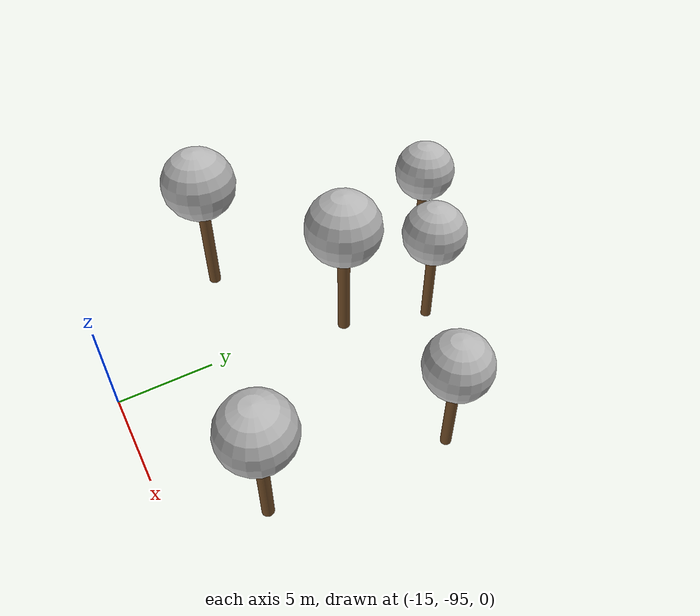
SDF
<sdf version="1.7">
 <world name="default">
  <plugin name="mrs_gazebo_static_transform_republisher_plugin" filename="libMrsGazeboCommonResources_StaticTransformRepublisher.so"/>
  <spherical_coordinates>
   <surface_model>EARTH_WGS84</surface_model>
   <latitude_deg>47.3977</latitude_deg>
   <longitude_deg>8.54559</longitude_deg>
   <elevation>0</elevation>
   <heading_deg>0</heading_deg>
  </spherical_coordinates>
  <physics name="default_physics" default="0" type="ode">
   <ode>
    <solver>
     <type>quick</type>
     <iters>10</iters>
     <sor>1.3</sor>
     <use_dynamic_moi_rescaling>0</use_dynamic_moi_rescaling>
    </solver>
    <constraints>
     <cfm>0</cfm>
     <erp>0.2</erp>
     <contact_max_correcting_vel>1000</contact_max_correcting_vel>
     <contact_surface_layer>0.001</contact_surface_layer>
    </constraints>
   </ode>
   <max_step_size>0.004</max_step_size>
   <real_time_factor>1</real_time_factor>
   <real_time_update_rate>250</real_time_update_rate>
  </physics>
  <scene><shadows>0</shadows><ambient>0.4 0.4 0.4 1</ambient><background>0.7 0.7 0.7 1</background></scene>
  <light name="sun" type="directional">
   <pose>0 0 1000 0.4 0.2 0</pose>
   <diffuse>1 1 1 1</diffuse>
   <specular>0.6 0.6 0.6 1</specular>
   <direction>0.1 0.1 -0.9</direction>
   <attenuation>
    <range>20</range>
    <constant>0.5</constant>
    <linear>0.01</linear>
    <quadratic>0.001</quadratic>
   </attenuation>
   <spot><inner_angle>0</inner_angle><outer_angle>0</outer_angle><falloff>0</falloff></spot>
  </light>
  <model name="the_void">
   <static>1</static>
   <link name="link">
    <pose>0 0 0.1 0 -0 0</pose>
    <visual name="the_void">
     <pose>0 0 2 0 -0 0</pose>
     <geometry><sphere><radius>0.25</radius></sphere></geometry>
     <material>
      <script><uri>file://media/materials/scripts/Gazebo.material</uri><name>Gazebo/Black</name></script>
     </material>
    </visual>
   </link>
   <pose>-1000 -1000 0 0 -0 0</pose>
  </model>
  <plugin name="mrs_gazebo_rviz_cam_synchronizer" filename="libMrsGazeboCommonResources_RvizCameraSynchronizer.so">
   <target_frame_id>gazebo_user_camera</target_frame_id>
   <world_origin_frame_id>uav1/gps_origin</world_origin_frame_id>
   <frame_to_follow>uav1</frame_to_follow>
  </plugin>
  <gravity>0 0 -9.8066</gravity>
  <magnetic_field>6e-06 2.3e-05 -4.2e-05</magnetic_field>
  <atmosphere type="adiabatic"/>
  <model name="tree_simple">
   <static>1</static>
   <link name="link">
    <pose>0 0 0.1 0 -0 0</pose>
    <inertial>
     <mass>666</mass>
     <inertia>
      <ixx>0.0861167</ixx>
      <ixy>0</ixy>
      <ixz>0</ixz>
      <iyy>0.0861167</iyy>
      <iyz>0</iyz>
      <izz>0.0861167</izz>
     </inertia>
    </inertial>
    <collision name="collision_trunk">
     <pose>0 0 2 0 -0 0</pose>
     <geometry><cylinder><radius>0.25</radius><length>4</length></cylinder></geometry>
     <surface>
      <contact>
       <poissons_ratio>0.347</poissons_ratio>
       <elastic_modulus>8.8e+09</elastic_modulus>
       <ode><kp>100000</kp><kd>100</kd><max_vel>100</max_vel><min_depth>0.001</min_depth></ode>
      </contact>
      <friction>
       <torsional>
        <coefficient>1</coefficient>
        <use_patch_radius>0</use_patch_radius>
        <surface_radius>0.01</surface_radius>
       </torsional>
      </friction>
     </surface>
    </collision>
    <collision name="collision_treetop">
     <pose>0 0 5.2 0 -0 0</pose>
     <geometry><sphere><radius>1.5</radius></sphere></geometry>
     <surface>
      <contact>
       <poissons_ratio>0.347</poissons_ratio>
       <elastic_modulus>8.8e+09</elastic_modulus>
       <ode><kp>100000</kp><kd>100</kd><max_vel>100</max_vel><min_depth>0.001</min_depth></ode>
      </contact>
      <friction>
       <torsional>
        <coefficient>1</coefficient>
        <use_patch_radius>0</use_patch_radius>
        <surface_radius>0.01</surface_radius>
       </torsional>
      </friction>
     </surface>
    </collision>
    <visual name="trunk">
     <pose>0 0 2 0 -0 0</pose>
     <geometry><cylinder><radius>0.25</radius><length>4</length></cylinder></geometry>
     <material>
      <script>
       <uri>model://tree_simple/scripts</uri>
       <uri>model://tree_simple/materials/textures</uri>
       <name>TreeSimple/Trunk</name>
      </script>
     </material>
    </visual>
    <visual name="treetop">
     <pose>0 0 5.2 0 -0 0</pose>
     <geometry><sphere><radius>1.5</radius></sphere></geometry>
     <material>
      <script>
       <uri>model://tree_simple/scripts</uri>
       <uri>model://tree_simple/materials/textures</uri>
       <name>TreeSimple/Treetop</name>
      </script>
     </material>
    </visual>
   </link>
   <pose>-14.8583 -77.4349 2.65837 0 -0 0</pose>
  </model>
  <model name="tree_simple_clone">
   <static>1</static>
   <link name="link">
    <pose>0 0 0.1 0 -0 0</pose>
    <inertial>
     <mass>666</mass>
     <inertia>
      <ixx>0.0861167</ixx>
      <ixy>0</ixy>
      <ixz>0</ixz>
      <iyy>0.0861167</iyy>
      <iyz>0</iyz>
      <izz>0.0861167</izz>
     </inertia>
    </inertial>
    <collision name="collision_trunk">
     <pose>0 0 2 0 -0 0</pose>
     <geometry><cylinder><radius>0.25</radius><length>4</length></cylinder></geometry>
     <surface>
      <contact>
       <poissons_ratio>0.347</poissons_ratio>
       <elastic_modulus>8.8e+09</elastic_modulus>
       <ode><kp>100000</kp><kd>100</kd><max_vel>100</max_vel><min_depth>0.001</min_depth></ode>
      </contact>
      <friction>
       <torsional>
        <coefficient>1</coefficient>
        <use_patch_radius>0</use_patch_radius>
        <surface_radius>0.01</surface_radius>
       </torsional>
      </friction>
     </surface>
    </collision>
    <collision name="collision_treetop">
     <pose>0 0 5.2 0 -0 0</pose>
     <geometry><sphere><radius>1.5</radius></sphere></geometry>
     <surface>
      <contact>
       <poissons_ratio>0.347</poissons_ratio>
       <elastic_modulus>8.8e+09</elastic_modulus>
       <ode><kp>100000</kp><kd>100</kd><max_vel>100</max_vel><min_depth>0.001</min_depth></ode>
      </contact>
      <friction>
       <torsional>
        <coefficient>1</coefficient>
        <use_patch_radius>0</use_patch_radius>
        <surface_radius>0.01</surface_radius>
       </torsional>
      </friction>
     </surface>
    </collision>
    <visual name="trunk">
     <pose>0 0 2 0 -0 0</pose>
     <geometry><cylinder><radius>0.25</radius><length>4</length></cylinder></geometry>
     <material>
      <script>
       <uri>model://tree_simple/scripts</uri>
       <uri>model://tree_simple/materials/textures</uri>
       <name>TreeSimple/Trunk</name>
      </script>
     </material>
    </visual>
    <visual name="treetop">
     <pose>0 0 5.2 0 -0 0</pose>
     <geometry><sphere><radius>1.5</radius></sphere></geometry>
     <material>
      <script>
       <uri>model://tree_simple/scripts</uri>
       <uri>model://tree_simple/materials/textures</uri>
       <name>TreeSimple/Treetop</name>
      </script>
     </material>
    </visual>
   </link>
   <pose>-10.5024 -79.8582 2.65837 0 -0 0</pose>
  </model>
  <model name="tree_simple_clone_clone">
   <static>1</static>
   <link name="link">
    <pose>0 0 0.1 0 -0 0</pose>
    <inertial>
     <mass>666</mass>
     <inertia>
      <ixx>0.0861167</ixx>
      <ixy>0</ixy>
      <ixz>0</ixz>
      <iyy>0.0861167</iyy>
      <iyz>0</iyz>
      <izz>0.0861167</izz>
     </inertia>
    </inertial>
    <collision name="collision_trunk">
     <pose>0 0 2 0 -0 0</pose>
     <geometry><cylinder><radius>0.25</radius><length>4</length></cylinder></geometry>
     <surface>
      <contact>
       <poissons_ratio>0.347</poissons_ratio>
       <elastic_modulus>8.8e+09</elastic_modulus>
       <ode><kp>100000</kp><kd>100</kd><max_vel>100</max_vel><min_depth>0.001</min_depth></ode>
      </contact>
      <friction>
       <torsional>
        <coefficient>1</coefficient>
        <use_patch_radius>0</use_patch_radius>
        <surface_radius>0.01</surface_radius>
       </torsional>
      </friction>
     </surface>
    </collision>
    <collision name="collision_treetop">
     <pose>0 0 5.2 0 -0 0</pose>
     <geometry><sphere><radius>1.5</radius></sphere></geometry>
     <surface>
      <contact>
       <poissons_ratio>0.347</poissons_ratio>
       <elastic_modulus>8.8e+09</elastic_modulus>
       <ode><kp>100000</kp><kd>100</kd><max_vel>100</max_vel><min_depth>0.001</min_depth></ode>
      </contact>
      <friction>
       <torsional>
        <coefficient>1</coefficient>
        <use_patch_radius>0</use_patch_radius>
        <surface_radius>0.01</surface_radius>
       </torsional>
      </friction>
     </surface>
    </collision>
    <visual name="trunk">
     <pose>0 0 2 0 -0 0</pose>
     <geometry><cylinder><radius>0.25</radius><length>4</length></cylinder></geometry>
     <material>
      <script>
       <uri>model://tree_simple/scripts</uri>
       <uri>model://tree_simple/materials/textures</uri>
       <name>TreeSimple/Trunk</name>
      </script>
     </material>
    </visual>
    <visual name="treetop">
     <pose>0 0 5.2 0 -0 0</pose>
     <geometry><sphere><radius>1.5</radius></sphere></geometry>
     <material>
      <script>
       <uri>model://tree_simple/scripts</uri>
       <uri>model://tree_simple/materials/textures</uri>
       <name>TreeSimple/Treetop</name>
      </script>
     </material>
    </visual>
   </link>
   <pose>-13.9981 -89.3129 6.52166 0 -0 0</pose>
  </model>
  <model name="tree_simple_clone_clone_clone">
   <static>1</static>
   <link name="link">
    <pose>0 0 0.1 0 -0 0</pose>
    <inertial>
     <mass>666</mass>
     <inertia>
      <ixx>0.0861167</ixx>
      <ixy>0</ixy>
      <ixz>0</ixz>
      <iyy>0.0861167</iyy>
      <iyz>0</iyz>
      <izz>0.0861167</izz>
     </inertia>
    </inertial>
    <collision name="collision_trunk">
     <pose>0 0 2 0 -0 0</pose>
     <geometry><cylinder><radius>0.25</radius><length>4</length></cylinder></geometry>
     <surface>
      <contact>
       <poissons_ratio>0.347</poissons_ratio>
       <elastic_modulus>8.8e+09</elastic_modulus>
       <ode><kp>100000</kp><kd>100</kd><max_vel>100</max_vel><min_depth>0.001</min_depth></ode>
      </contact>
      <friction>
       <torsional>
        <coefficient>1</coefficient>
        <use_patch_radius>0</use_patch_radius>
        <surface_radius>0.01</surface_radius>
       </torsional>
      </friction>
     </surface>
    </collision>
    <collision name="collision_treetop">
     <pose>0 0 5.2 0 -0 0</pose>
     <geometry><sphere><radius>1.5</radius></sphere></geometry>
     <surface>
      <contact>
       <poissons_ratio>0.347</poissons_ratio>
       <elastic_modulus>8.8e+09</elastic_modulus>
       <ode><kp>100000</kp><kd>100</kd><max_vel>100</max_vel><min_depth>0.001</min_depth></ode>
      </contact>
      <friction>
       <torsional>
        <coefficient>1</coefficient>
        <use_patch_radius>0</use_patch_radius>
        <surface_radius>0.01</surface_radius>
       </torsional>
      </friction>
     </surface>
    </collision>
    <visual name="trunk">
     <pose>0 0 2 0 -0 0</pose>
     <geometry><cylinder><radius>0.25</radius><length>4</length></cylinder></geometry>
     <material>
      <script>
       <uri>model://tree_simple/scripts</uri>
       <uri>model://tree_simple/materials/textures</uri>
       <name>TreeSimple/Trunk</name>
      </script>
     </material>
    </visual>
    <visual name="treetop">
     <pose>0 0 5.2 0 -0 0</pose>
     <geometry><sphere><radius>1.5</radius></sphere></geometry>
     <material>
      <script>
       <uri>model://tree_simple/scripts</uri>
       <uri>model://tree_simple/materials/textures</uri>
       <name>TreeSimple/Treetop</name>
      </script>
     </material>
    </visual>
   </link>
   <pose>-8.68555 -85.6352 6.52166 0 -0 0</pose>
  </model>
  <model name="tree_simple_clone_clone_clone_0">
   <static>1</static>
   <link name="link">
    <pose>0 0 0.1 0 -0 0</pose>
    <inertial>
     <mass>666</mass>
     <inertia>
      <ixx>0.0861167</ixx>
      <ixy>0</ixy>
      <ixz>0</ixz>
      <iyy>0.0861167</iyy>
      <iyz>0</iyz>
      <izz>0.0861167</izz>
     </inertia>
    </inertial>
    <collision name="collision_trunk">
     <pose>0 0 2 0 -0 0</pose>
     <geometry><cylinder><radius>0.25</radius><length>4</length></cylinder></geometry>
     <surface>
      <contact>
       <poissons_ratio>0.347</poissons_ratio>
       <elastic_modulus>8.8e+09</elastic_modulus>
       <ode><kp>100000</kp><kd>100</kd><max_vel>100</max_vel><min_depth>0.001</min_depth></ode>
      </contact>
      <friction>
       <torsional>
        <coefficient>1</coefficient>
        <use_patch_radius>0</use_patch_radius>
        <surface_radius>0.01</surface_radius>
       </torsional>
      </friction>
     </surface>
    </collision>
    <collision name="collision_treetop">
     <pose>0 0 5.2 0 -0 0</pose>
     <geometry><sphere><radius>1.5</radius></sphere></geometry>
     <surface>
      <contact>
       <poissons_ratio>0.347</poissons_ratio>
       <elastic_modulus>8.8e+09</elastic_modulus>
       <ode><kp>100000</kp><kd>100</kd><max_vel>100</max_vel><min_depth>0.001</min_depth></ode>
      </contact>
      <friction>
       <torsional>
        <coefficient>1</coefficient>
        <use_patch_radius>0</use_patch_radius>
        <surface_radius>0.01</surface_radius>
       </torsional>
      </friction>
     </surface>
    </collision>
    <visual name="trunk">
     <pose>0 0 2 0 -0 0</pose>
     <geometry><cylinder><radius>0.25</radius><length>4</length></cylinder></geometry>
     <material>
      <script>
       <uri>model://tree_simple/scripts</uri>
       <uri>model://tree_simple/materials/textures</uri>
       <name>TreeSimple/Trunk</name>
      </script>
     </material>
    </visual>
    <visual name="treetop">
     <pose>0 0 5.2 0 -0 0</pose>
     <geometry><sphere><radius>1.5</radius></sphere></geometry>
     <material>
      <script>
       <uri>model://tree_simple/scripts</uri>
       <uri>model://tree_simple/materials/textures</uri>
       <name>TreeSimple/Treetop</name>
      </script>
     </material>
    </visual>
   </link>
   <pose>-4.38555 -82.8281 1.43203 0 -0 0</pose>
  </model>
  <model name="tree_simple_clone_clone_clone_1">
   <static>1</static>
   <link name="link">
    <pose>0 0 0.1 0 -0 0</pose>
    <inertial>
     <mass>666</mass>
     <inertia>
      <ixx>0.0861167</ixx>
      <ixy>0</ixy>
      <ixz>0</ixz>
      <iyy>0.0861167</iyy>
      <iyz>0</iyz>
      <izz>0.0861167</izz>
     </inertia>
    </inertial>
    <collision name="collision_trunk">
     <pose>0 0 2 0 -0 0</pose>
     <geometry><cylinder><radius>0.25</radius><length>4</length></cylinder></geometry>
     <surface>
      <contact>
       <poissons_ratio>0.347</poissons_ratio>
       <elastic_modulus>8.8e+09</elastic_modulus>
       <ode><kp>100000</kp><kd>100</kd><max_vel>100</max_vel><min_depth>0.001</min_depth></ode>
      </contact>
      <friction>
       <torsional>
        <coefficient>1</coefficient>
        <use_patch_radius>0</use_patch_radius>
        <surface_radius>0.01</surface_radius>
       </torsional>
      </friction>
     </surface>
    </collision>
    <collision name="collision_treetop">
     <pose>0 0 5.2 0 -0 0</pose>
     <geometry><sphere><radius>1.5</radius></sphere></geometry>
     <surface>
      <contact>
       <poissons_ratio>0.347</poissons_ratio>
       <elastic_modulus>8.8e+09</elastic_modulus>
       <ode><kp>100000</kp><kd>100</kd><max_vel>100</max_vel><min_depth>0.001</min_depth></ode>
      </contact>
      <friction>
       <torsional>
        <coefficient>1</coefficient>
        <use_patch_radius>0</use_patch_radius>
        <surface_radius>0.01</surface_radius>
       </torsional>
      </friction>
     </surface>
    </collision>
    <visual name="trunk">
     <pose>0 0 2 0 -0 0</pose>
     <geometry><cylinder><radius>0.25</radius><length>4</length></cylinder></geometry>
     <material>
      <script>
       <uri>model://tree_simple/scripts</uri>
       <uri>model://tree_simple/materials/textures</uri>
       <name>TreeSimple/Trunk</name>
      </script>
     </material>
    </visual>
    <visual name="treetop">
     <pose>0 0 5.2 0 -0 0</pose>
     <geometry><sphere><radius>1.5</radius></sphere></geometry>
     <material>
      <script>
       <uri>model://tree_simple/scripts</uri>
       <uri>model://tree_simple/materials/textures</uri>
       <name>TreeSimple/Treetop</name>
      </script>
     </material>
    </visual>
   </link>
   <pose>-4.13426 -91.5385 3.4407 0 -0 0</pose>
  </model>
 </world>
</sdf>
